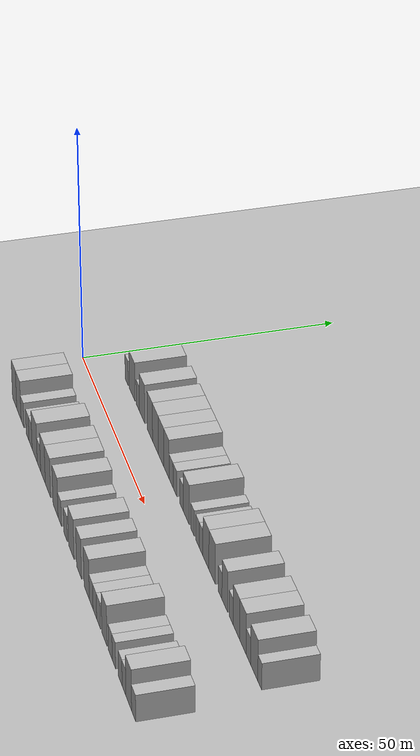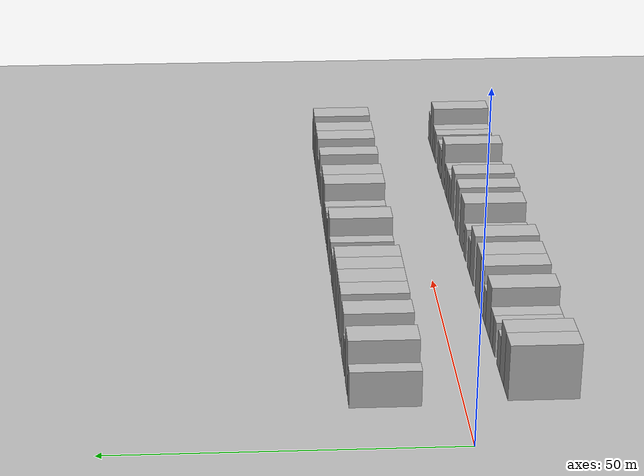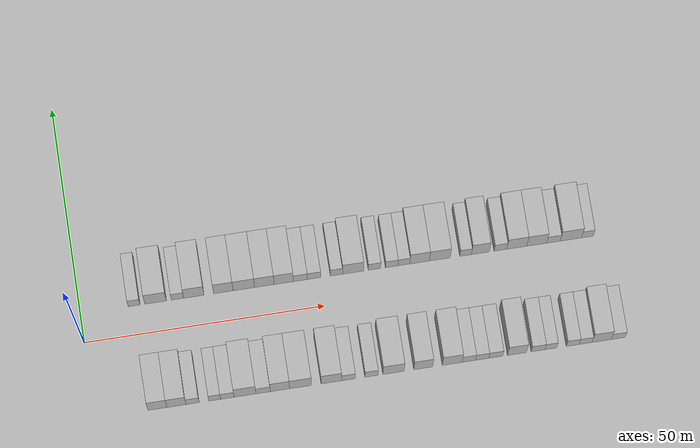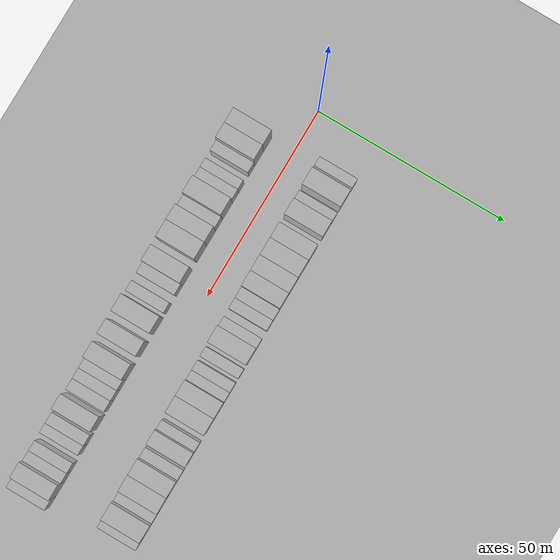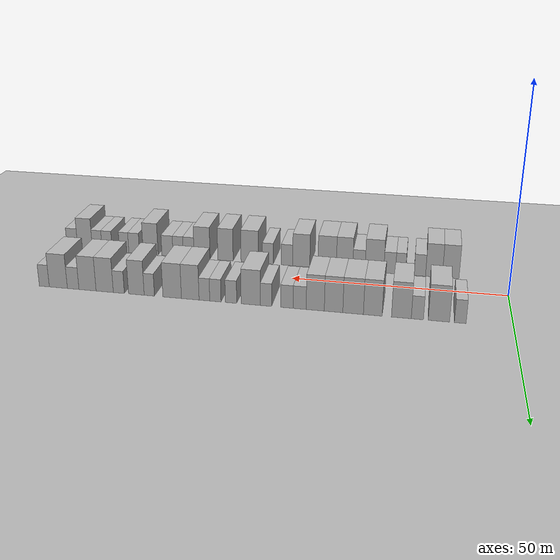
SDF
<sdf version="1.6">
 <world name="default">
  <include><name>ground_plane_1</name><uri>model://HANNAS_ground_plane</uri></include>
  <include>
   <name>ground_plane_2</name>
   <uri>model://HANNAS_ground_plane</uri>
   <pose>100 0 0  0 0 0</pose>
  </include>
  <model name="building_1">
   <static>1</static>
   <pose>11.2212 11.0000 0 0.000000 0.000000 1.570796</pose>
   <link name="link">
    <pose>0 0 3.00 0 0 0</pose>
    <collision name="collision"><geometry><box><size>10.0000 2.4425 6.0000</size></box></geometry></collision>
    <visual name="visual">
     <cast_shadows>0</cast_shadows>
     <geometry><box><size>10.0000 2.4425 6.0000</size></box></geometry>
     <material>
      <script>
       <uri>model://HANNAS_wall/materials/scripts</uri>
       <uri>model://HANNAS_wall/materials/textures</uri>
       <name>vrc/HANNAS_wall</name>
      </script>
     </material>
    </visual>
   </link>
  </model>
  <model name="building_2">
   <static>1</static>
   <pose>15.6833 11.0000 0 0.000000 0.000000 1.570796</pose>
   <link name="link">
    <pose>0 0 4.50 0 0 0</pose>
    <collision name="collision"><geometry><box><size>10.0000 4.4816 9.0000</size></box></geometry></collision>
    <visual name="visual">
     <cast_shadows>0</cast_shadows>
     <geometry><box><size>10.0000 4.4816 9.0000</size></box></geometry>
     <material>
      <script>
       <uri>model://HANNAS_wall/materials/scripts</uri>
       <uri>model://HANNAS_wall/materials/textures</uri>
       <name>vrc/HANNAS_wall</name>
      </script>
     </material>
    </visual>
   </link>
  </model>
  <model name="building_3">
   <static>1</static>
   <pose>20.2165 11.0000 0 0.000000 0.000000 1.570796</pose>
   <link name="link">
    <pose>0 0 3.00 0 0 0</pose>
    <collision name="collision"><geometry><box><size>10.0000 2.5849 6.0000</size></box></geometry></collision>
    <visual name="visual">
     <cast_shadows>0</cast_shadows>
     <geometry><box><size>10.0000 2.5849 6.0000</size></box></geometry>
     <material>
      <script>
       <uri>model://HANNAS_wall/materials/scripts</uri>
       <uri>model://HANNAS_wall/materials/textures</uri>
       <name>vrc/HANNAS_wall</name>
      </script>
     </material>
    </visual>
   </link>
  </model>
  <model name="building_4">
   <static>1</static>
   <pose>23.6177 11.0000 0 0.000000 0.000000 1.570796</pose>
   <link name="link">
    <pose>0 0 4.50 0 0 0</pose>
    <collision name="collision"><geometry><box><size>10.0000 4.2175 9.0000</size></box></geometry></collision>
    <visual name="visual">
     <cast_shadows>0</cast_shadows>
     <geometry><box><size>10.0000 4.2175 9.0000</size></box></geometry>
     <material>
      <script>
       <uri>model://HANNAS_wall/materials/scripts</uri>
       <uri>model://HANNAS_wall/materials/textures</uri>
       <name>vrc/HANNAS_wall</name>
      </script>
     </material>
    </visual>
   </link>
  </model>
  <model name="building_5">
   <static>1</static>
   <pose>29.7440 11.0000 0 0.000000 0.000000 1.570796</pose>
   <link name="link">
    <pose>0 0 4.50 0 0 0</pose>
    <collision name="collision"><geometry><box><size>10.0000 4.0352 9.0000</size></box></geometry></collision>
    <visual name="visual">
     <cast_shadows>0</cast_shadows>
     <geometry><box><size>10.0000 4.0352 9.0000</size></box></geometry>
     <material>
      <script>
       <uri>model://HANNAS_wall/materials/scripts</uri>
       <uri>model://HANNAS_wall/materials/textures</uri>
       <name>vrc/HANNAS_wall</name>
      </script>
     </material>
    </visual>
   </link>
  </model>
  <model name="building_6">
   <static>1</static>
   <pose>34.0001 11.0000 0 0.000000 0.000000 1.570796</pose>
   <link name="link">
    <pose>0 0 4.50 0 0 0</pose>
    <collision name="collision"><geometry><box><size>10.0000 4.4770 9.0000</size></box></geometry></collision>
    <visual name="visual">
     <cast_shadows>0</cast_shadows>
     <geometry><box><size>10.0000 4.4770 9.0000</size></box></geometry>
     <material>
      <script>
       <uri>model://HANNAS_wall/materials/scripts</uri>
       <uri>model://HANNAS_wall/materials/textures</uri>
       <name>vrc/HANNAS_wall</name>
      </script>
     </material>
    </visual>
   </link>
  </model>
  <model name="building_7">
   <static>1</static>
   <pose>38.2673 11.0000 0 0.000000 0.000000 1.570796</pose>
   <link name="link">
    <pose>0 0 4.50 0 0 0</pose>
    <collision name="collision"><geometry><box><size>10.0000 4.0575 9.0000</size></box></geometry></collision>
    <visual name="visual">
     <cast_shadows>0</cast_shadows>
     <geometry><box><size>10.0000 4.0575 9.0000</size></box></geometry>
     <material>
      <script>
       <uri>model://HANNAS_wall/materials/scripts</uri>
       <uri>model://HANNAS_wall/materials/textures</uri>
       <name>vrc/HANNAS_wall</name>
      </script>
     </material>
    </visual>
   </link>
  </model>
  <model name="building_8">
   <static>1</static>
   <pose>42.3002 11.0000 0 0.000000 0.000000 1.570796</pose>
   <link name="link">
    <pose>0 0 4.50 0 0 0</pose>
    <collision name="collision"><geometry><box><size>10.0000 4.0082 9.0000</size></box></geometry></collision>
    <visual name="visual">
     <cast_shadows>0</cast_shadows>
     <geometry><box><size>10.0000 4.0082 9.0000</size></box></geometry>
     <material>
      <script>
       <uri>model://HANNAS_wall/materials/scripts</uri>
       <uri>model://HANNAS_wall/materials/textures</uri>
       <name>vrc/HANNAS_wall</name>
      </script>
     </material>
    </visual>
   </link>
  </model>
  <model name="building_9">
   <static>1</static>
   <pose>45.7667 11.0000 0 0.000000 0.000000 1.570796</pose>
   <link name="link">
    <pose>0 0 3.00 0 0 0</pose>
    <collision name="collision"><geometry><box><size>10.0000 2.9247 6.0000</size></box></geometry></collision>
    <visual name="visual">
     <cast_shadows>0</cast_shadows>
     <geometry><box><size>10.0000 2.9247 6.0000</size></box></geometry>
     <material>
      <script>
       <uri>model://HANNAS_wall/materials/scripts</uri>
       <uri>model://HANNAS_wall/materials/textures</uri>
       <name>vrc/HANNAS_wall</name>
      </script>
     </material>
    </visual>
   </link>
  </model>
  <model name="building_10">
   <static>1</static>
   <pose>48.6232 11.0000 0 0.000000 0.000000 1.570796</pose>
   <link name="link">
    <pose>0 0 3.00 0 0 0</pose>
    <collision name="collision"><geometry><box><size>10.0000 2.7884 6.0000</size></box></geometry></collision>
    <visual name="visual">
     <cast_shadows>0</cast_shadows>
     <geometry><box><size>10.0000 2.7884 6.0000</size></box></geometry>
     <material>
      <script>
       <uri>model://HANNAS_wall/materials/scripts</uri>
       <uri>model://HANNAS_wall/materials/textures</uri>
       <name>vrc/HANNAS_wall</name>
      </script>
     </material>
    </visual>
   </link>
  </model>
  <model name="building_11">
   <static>1</static>
   <pose>53.2833 11.0000 0 0.000000 0.000000 1.570796</pose>
   <link name="link">
    <pose>0 0 3.00 0 0 0</pose>
    <collision name="collision"><geometry><box><size>10.0000 2.5317 6.0000</size></box></geometry></collision>
    <visual name="visual">
     <cast_shadows>0</cast_shadows>
     <geometry><box><size>10.0000 2.5317 6.0000</size></box></geometry>
     <material>
      <script>
       <uri>model://HANNAS_wall/materials/scripts</uri>
       <uri>model://HANNAS_wall/materials/textures</uri>
       <name>vrc/HANNAS_wall</name>
      </script>
     </material>
    </visual>
   </link>
  </model>
  <model name="building_12">
   <static>1</static>
   <pose>56.7394 11.0000 0 0.000000 0.000000 1.570796</pose>
   <link name="link">
    <pose>0 0 4.50 0 0 0</pose>
    <collision name="collision"><geometry><box><size>10.0000 4.3805 9.0000</size></box></geometry></collision>
    <visual name="visual">
     <cast_shadows>0</cast_shadows>
     <geometry><box><size>10.0000 4.3805 9.0000</size></box></geometry>
     <material>
      <script>
       <uri>model://HANNAS_wall/materials/scripts</uri>
       <uri>model://HANNAS_wall/materials/textures</uri>
       <name>vrc/HANNAS_wall</name>
      </script>
     </material>
    </visual>
   </link>
  </model>
  <model name="building_13">
   <static>1</static>
   <pose>61.2261 11.0000 0 0.000000 0.000000 1.570796</pose>
   <link name="link">
    <pose>0 0 3.00 0 0 0</pose>
    <collision name="collision"><geometry><box><size>10.0000 2.5931 6.0000</size></box></geometry></collision>
    <visual name="visual">
     <cast_shadows>0</cast_shadows>
     <geometry><box><size>10.0000 2.5931 6.0000</size></box></geometry>
     <material>
      <script>
       <uri>model://HANNAS_wall/materials/scripts</uri>
       <uri>model://HANNAS_wall/materials/textures</uri>
       <name>vrc/HANNAS_wall</name>
      </script>
     </material>
    </visual>
   </link>
  </model>
  <model name="building_14">
   <static>1</static>
   <pose>64.8206 11.0000 0 0.000000 0.000000 1.570796</pose>
   <link name="link">
    <pose>0 0 3.00 0 0 0</pose>
    <collision name="collision"><geometry><box><size>10.0000 2.5959 6.0000</size></box></geometry></collision>
    <visual name="visual">
     <cast_shadows>0</cast_shadows>
     <geometry><box><size>10.0000 2.5959 6.0000</size></box></geometry>
     <material>
      <script>
       <uri>model://HANNAS_wall/materials/scripts</uri>
       <uri>model://HANNAS_wall/materials/textures</uri>
       <name>vrc/HANNAS_wall</name>
      </script>
     </material>
    </visual>
   </link>
  </model>
  <model name="building_15">
   <static>1</static>
   <pose>67.3522 11.0000 0 0.000000 0.000000 1.570796</pose>
   <link name="link">
    <pose>0 0 3.00 0 0 0</pose>
    <collision name="collision"><geometry><box><size>10.0000 2.4673 6.0000</size></box></geometry></collision>
    <visual name="visual">
     <cast_shadows>0</cast_shadows>
     <geometry><box><size>10.0000 2.4673 6.0000</size></box></geometry>
     <material>
      <script>
       <uri>model://HANNAS_wall/materials/scripts</uri>
       <uri>model://HANNAS_wall/materials/textures</uri>
       <name>vrc/HANNAS_wall</name>
      </script>
     </material>
    </visual>
   </link>
  </model>
  <model name="building_16">
   <static>1</static>
   <pose>70.6427 11.0000 0 0.000000 0.000000 1.570796</pose>
   <link name="link">
    <pose>0 0 4.50 0 0 0</pose>
    <collision name="collision"><geometry><box><size>10.0000 4.1138 9.0000</size></box></geometry></collision>
    <visual name="visual">
     <cast_shadows>0</cast_shadows>
     <geometry><box><size>10.0000 4.1138 9.0000</size></box></geometry>
     <material>
      <script>
       <uri>model://HANNAS_wall/materials/scripts</uri>
       <uri>model://HANNAS_wall/materials/textures</uri>
       <name>vrc/HANNAS_wall</name>
      </script>
     </material>
    </visual>
   </link>
  </model>
  <model name="building_17">
   <static>1</static>
   <pose>74.8730 11.0000 0 0.000000 0.000000 1.570796</pose>
   <link name="link">
    <pose>0 0 4.50 0 0 0</pose>
    <collision name="collision"><geometry><box><size>10.0000 4.3467 9.0000</size></box></geometry></collision>
    <visual name="visual">
     <cast_shadows>0</cast_shadows>
     <geometry><box><size>10.0000 4.3467 9.0000</size></box></geometry>
     <material>
      <script>
       <uri>model://HANNAS_wall/materials/scripts</uri>
       <uri>model://HANNAS_wall/materials/textures</uri>
       <name>vrc/HANNAS_wall</name>
      </script>
     </material>
    </visual>
   </link>
  </model>
  <model name="building_18">
   <static>1</static>
   <pose>80.2642 11.0000 0 0.000000 0.000000 1.570796</pose>
   <link name="link">
    <pose>0 0 3.00 0 0 0</pose>
    <collision name="collision"><geometry><box><size>10.0000 2.4358 6.0000</size></box></geometry></collision>
    <visual name="visual">
     <cast_shadows>0</cast_shadows>
     <geometry><box><size>10.0000 2.4358 6.0000</size></box></geometry>
     <material>
      <script>
       <uri>model://HANNAS_wall/materials/scripts</uri>
       <uri>model://HANNAS_wall/materials/textures</uri>
       <name>vrc/HANNAS_wall</name>
      </script>
     </material>
    </visual>
   </link>
  </model>
  <model name="building_19">
   <static>1</static>
   <pose>83.3483 11.0000 0 0.000000 0.000000 1.570796</pose>
   <link name="link">
    <pose>0 0 4.50 0 0 0</pose>
    <collision name="collision"><geometry><box><size>10.0000 3.7323 9.0000</size></box></geometry></collision>
    <visual name="visual">
     <cast_shadows>0</cast_shadows>
     <geometry><box><size>10.0000 3.7323 9.0000</size></box></geometry>
     <material>
      <script>
       <uri>model://HANNAS_wall/materials/scripts</uri>
       <uri>model://HANNAS_wall/materials/textures</uri>
       <name>vrc/HANNAS_wall</name>
      </script>
     </material>
    </visual>
   </link>
  </model>
  <model name="building_20">
   <static>1</static>
   <pose>87.5436 11.0000 0 0.000000 0.000000 1.570796</pose>
   <link name="link">
    <pose>0 0 3.00 0 0 0</pose>
    <collision name="collision"><geometry><box><size>10.0000 2.6584 6.0000</size></box></geometry></collision>
    <visual name="visual">
     <cast_shadows>0</cast_shadows>
     <geometry><box><size>10.0000 2.6584 6.0000</size></box></geometry>
     <material>
      <script>
       <uri>model://HANNAS_wall/materials/scripts</uri>
       <uri>model://HANNAS_wall/materials/textures</uri>
       <name>vrc/HANNAS_wall</name>
      </script>
     </material>
    </visual>
   </link>
  </model>
  <model name="building_21">
   <static>1</static>
   <pose>90.9556 11.0000 0 0.000000 0.000000 1.570796</pose>
   <link name="link">
    <pose>0 0 4.50 0 0 0</pose>
    <collision name="collision"><geometry><box><size>10.0000 4.1655 9.0000</size></box></geometry></collision>
    <visual name="visual">
     <cast_shadows>0</cast_shadows>
     <geometry><box><size>10.0000 4.1655 9.0000</size></box></geometry>
     <material>
      <script>
       <uri>model://HANNAS_wall/materials/scripts</uri>
       <uri>model://HANNAS_wall/materials/textures</uri>
       <name>vrc/HANNAS_wall</name>
      </script>
     </material>
    </visual>
   </link>
  </model>
  <model name="building_22">
   <static>1</static>
   <pose>95.1269 11.0000 0 0.000000 0.000000 1.570796</pose>
   <link name="link">
    <pose>0 0 4.50 0 0 0</pose>
    <collision name="collision"><geometry><box><size>10.0000 4.1772 9.0000</size></box></geometry></collision>
    <visual name="visual">
     <cast_shadows>0</cast_shadows>
     <geometry><box><size>10.0000 4.1772 9.0000</size></box></geometry>
     <material>
      <script>
       <uri>model://HANNAS_wall/materials/scripts</uri>
       <uri>model://HANNAS_wall/materials/textures</uri>
       <name>vrc/HANNAS_wall</name>
      </script>
     </material>
    </visual>
   </link>
  </model>
  <model name="building_23">
   <static>1</static>
   <pose>98.6332 11.0000 0 0.000000 0.000000 1.570796</pose>
   <link name="link">
    <pose>0 0 3.00 0 0 0</pose>
    <collision name="collision"><geometry><box><size>10.0000 2.8355 6.0000</size></box></geometry></collision>
    <visual name="visual">
     <cast_shadows>0</cast_shadows>
     <geometry><box><size>10.0000 2.8355 6.0000</size></box></geometry>
     <material>
      <script>
       <uri>model://HANNAS_wall/materials/scripts</uri>
       <uri>model://HANNAS_wall/materials/textures</uri>
       <name>vrc/HANNAS_wall</name>
      </script>
     </material>
    </visual>
   </link>
  </model>
  <model name="building_24">
   <static>1</static>
   <pose>102.2851 11.0000 0 0.000000 0.000000 1.570796</pose>
   <link name="link">
    <pose>0 0 4.50 0 0 0</pose>
    <collision name="collision"><geometry><box><size>10.0000 4.4683 9.0000</size></box></geometry></collision>
    <visual name="visual">
     <cast_shadows>0</cast_shadows>
     <geometry><box><size>10.0000 4.4683 9.0000</size></box></geometry>
     <material>
      <script>
       <uri>model://HANNAS_wall/materials/scripts</uri>
       <uri>model://HANNAS_wall/materials/textures</uri>
       <name>vrc/HANNAS_wall</name>
      </script>
     </material>
    </visual>
   </link>
  </model>
  <model name="building_25">
   <static>1</static>
   <pose>105.7495 11.0000 0 0.000000 0.000000 1.570796</pose>
   <link name="link">
    <pose>0 0 3.00 0 0 0</pose>
    <collision name="collision"><geometry><box><size>10.0000 2.4605 6.0000</size></box></geometry></collision>
    <visual name="visual">
     <cast_shadows>0</cast_shadows>
     <geometry><box><size>10.0000 2.4605 6.0000</size></box></geometry>
     <material>
      <script>
       <uri>model://HANNAS_wall/materials/scripts</uri>
       <uri>model://HANNAS_wall/materials/textures</uri>
       <name>vrc/HANNAS_wall</name>
      </script>
     </material>
    </visual>
   </link>
  </model>
  <model name="building_52">
   <static>1</static>
   <pose>12.9461 -11.0000 0 0.000000 0.000000 1.570796</pose>
   <link name="link">
    <pose>0 0 4.50 0 0 0</pose>
    <collision name="collision"><geometry><box><size>10.0000 3.8923 9.0000</size></box></geometry></collision>
    <visual name="visual">
     <cast_shadows>0</cast_shadows>
     <geometry><box><size>10.0000 3.8923 9.0000</size></box></geometry>
     <material>
      <script>
       <uri>model://HANNAS_wall/materials/scripts</uri>
       <uri>model://HANNAS_wall/materials/textures</uri>
       <name>vrc/HANNAS_wall</name>
      </script>
     </material>
    </visual>
   </link>
  </model>
  <model name="building_53">
   <static>1</static>
   <pose>16.8509 -11.0000 0 0.000000 0.000000 1.570796</pose>
   <link name="link">
    <pose>0 0 4.50 0 0 0</pose>
    <collision name="collision"><geometry><box><size>10.0000 3.9173 9.0000</size></box></geometry></collision>
    <visual name="visual">
     <cast_shadows>0</cast_shadows>
     <geometry><box><size>10.0000 3.9173 9.0000</size></box></geometry>
     <material>
      <script>
       <uri>model://HANNAS_wall/materials/scripts</uri>
       <uri>model://HANNAS_wall/materials/textures</uri>
       <name>vrc/HANNAS_wall</name>
      </script>
     </material>
    </visual>
   </link>
  </model>
  <model name="building_54">
   <static>1</static>
   <pose>20.1621 -11.0000 0 0.000000 0.000000 1.570796</pose>
   <link name="link">
    <pose>0 0 3.00 0 0 0</pose>
    <collision name="collision"><geometry><box><size>10.0000 2.7050 6.0000</size></box></geometry></collision>
    <visual name="visual">
     <cast_shadows>0</cast_shadows>
     <geometry><box><size>10.0000 2.7050 6.0000</size></box></geometry>
     <material>
      <script>
       <uri>model://HANNAS_wall/materials/scripts</uri>
       <uri>model://HANNAS_wall/materials/textures</uri>
       <name>vrc/HANNAS_wall</name>
      </script>
     </material>
    </visual>
   </link>
  </model>
  <model name="building_55">
   <static>1</static>
   <pose>24.7179 -11.0000 0 0.000000 0.000000 1.570796</pose>
   <link name="link">
    <pose>0 0 3.00 0 0 0</pose>
    <collision name="collision"><geometry><box><size>10.0000 2.4067 6.0000</size></box></geometry></collision>
    <visual name="visual">
     <cast_shadows>0</cast_shadows>
     <geometry><box><size>10.0000 2.4067 6.0000</size></box></geometry>
     <material>
      <script>
       <uri>model://HANNAS_wall/materials/scripts</uri>
       <uri>model://HANNAS_wall/materials/textures</uri>
       <name>vrc/HANNAS_wall</name>
      </script>
     </material>
    </visual>
   </link>
  </model>
  <model name="building_56">
   <static>1</static>
   <pose>27.3172 -11.0000 0 0.000000 0.000000 1.570796</pose>
   <link name="link">
    <pose>0 0 3.00 0 0 0</pose>
    <collision name="collision"><geometry><box><size>10.0000 2.7918 6.0000</size></box></geometry></collision>
    <visual name="visual">
     <cast_shadows>0</cast_shadows>
     <geometry><box><size>10.0000 2.7918 6.0000</size></box></geometry>
     <material>
      <script>
       <uri>model://HANNAS_wall/materials/scripts</uri>
       <uri>model://HANNAS_wall/materials/textures</uri>
       <name>vrc/HANNAS_wall</name>
      </script>
     </material>
    </visual>
   </link>
  </model>
  <model name="building_57">
   <static>1</static>
   <pose>30.9598 -11.0000 0 0.000000 0.000000 1.570796</pose>
   <link name="link">
    <pose>0 0 4.50 0 0 0</pose>
    <collision name="collision"><geometry><box><size>10.0000 4.4933 9.0000</size></box></geometry></collision>
    <visual name="visual">
     <cast_shadows>0</cast_shadows>
     <geometry><box><size>10.0000 4.4933 9.0000</size></box></geometry>
     <material>
      <script>
       <uri>model://HANNAS_wall/materials/scripts</uri>
       <uri>model://HANNAS_wall/materials/textures</uri>
       <name>vrc/HANNAS_wall</name>
      </script>
     </material>
    </visual>
   </link>
  </model>
  <model name="building_58">
   <static>1</static>
   <pose>34.6957 -11.0000 0 0.000000 0.000000 1.570796</pose>
   <link name="link">
    <pose>0 0 3.00 0 0 0</pose>
    <collision name="collision"><geometry><box><size>10.0000 2.9786 6.0000</size></box></geometry></collision>
    <visual name="visual">
     <cast_shadows>0</cast_shadows>
     <geometry><box><size>10.0000 2.9786 6.0000</size></box></geometry>
     <material>
      <script>
       <uri>model://HANNAS_wall/materials/scripts</uri>
       <uri>model://HANNAS_wall/materials/textures</uri>
       <name>vrc/HANNAS_wall</name>
      </script>
     </material>
    </visual>
   </link>
  </model>
  <model name="building_59">
   <static>1</static>
   <pose>38.1851 -11.0000 0 0.000000 0.000000 1.570796</pose>
   <link name="link">
    <pose>0 0 4.50 0 0 0</pose>
    <collision name="collision"><geometry><box><size>10.0000 4.0000 9.0000</size></box></geometry></collision>
    <visual name="visual">
     <cast_shadows>0</cast_shadows>
     <geometry><box><size>10.0000 4.0000 9.0000</size></box></geometry>
     <material>
      <script>
       <uri>model://HANNAS_wall/materials/scripts</uri>
       <uri>model://HANNAS_wall/materials/textures</uri>
       <name>vrc/HANNAS_wall</name>
      </script>
     </material>
    </visual>
   </link>
  </model>
  <model name="building_60">
   <static>1</static>
   <pose>42.4343 -11.0000 0 0.000000 0.000000 1.570796</pose>
   <link name="link">
    <pose>0 0 4.50 0 0 0</pose>
    <collision name="collision"><geometry><box><size>10.0000 4.4985 9.0000</size></box></geometry></collision>
    <visual name="visual">
     <cast_shadows>0</cast_shadows>
     <geometry><box><size>10.0000 4.4985 9.0000</size></box></geometry>
     <material>
      <script>
       <uri>model://HANNAS_wall/materials/scripts</uri>
       <uri>model://HANNAS_wall/materials/textures</uri>
       <name>vrc/HANNAS_wall</name>
      </script>
     </material>
    </visual>
   </link>
  </model>
  <model name="building_61">
   <static>1</static>
   <pose>48.7974 -11.0000 0 0.000000 0.000000 1.570796</pose>
   <link name="link">
    <pose>0 0 4.50 0 0 0</pose>
    <collision name="collision"><geometry><box><size>10.0000 4.2277 9.0000</size></box></geometry></collision>
    <visual name="visual">
     <cast_shadows>0</cast_shadows>
     <geometry><box><size>10.0000 4.2277 9.0000</size></box></geometry>
     <material>
      <script>
       <uri>model://HANNAS_wall/materials/scripts</uri>
       <uri>model://HANNAS_wall/materials/textures</uri>
       <name>vrc/HANNAS_wall</name>
      </script>
     </material>
    </visual>
   </link>
  </model>
  <model name="building_62">
   <static>1</static>
   <pose>52.3342 -11.0000 0 0.000000 0.000000 1.570796</pose>
   <link name="link">
    <pose>0 0 3.00 0 0 0</pose>
    <collision name="collision"><geometry><box><size>10.0000 2.8459 6.0000</size></box></geometry></collision>
    <visual name="visual">
     <cast_shadows>0</cast_shadows>
     <geometry><box><size>10.0000 2.8459 6.0000</size></box></geometry>
     <material>
      <script>
       <uri>model://HANNAS_wall/materials/scripts</uri>
       <uri>model://HANNAS_wall/materials/textures</uri>
       <name>vrc/HANNAS_wall</name>
      </script>
     </material>
    </visual>
   </link>
  </model>
  <model name="building_63">
   <static>1</static>
   <pose>57.1137 -11.0000 0 0.000000 0.000000 1.570796</pose>
   <link name="link">
    <pose>0 0 3.00 0 0 0</pose>
    <collision name="collision"><geometry><box><size>10.0000 2.7132 6.0000</size></box></geometry></collision>
    <visual name="visual">
     <cast_shadows>0</cast_shadows>
     <geometry><box><size>10.0000 2.7132 6.0000</size></box></geometry>
     <material>
      <script>
       <uri>model://HANNAS_wall/materials/scripts</uri>
       <uri>model://HANNAS_wall/materials/textures</uri>
       <name>vrc/HANNAS_wall</name>
      </script>
     </material>
    </visual>
   </link>
  </model>
  <model name="building_64">
   <static>1</static>
   <pose>61.6842 -11.0000 0 0.000000 0.000000 1.570796</pose>
   <link name="link">
    <pose>0 0 4.50 0 0 0</pose>
    <collision name="collision"><geometry><box><size>10.0000 4.4278 9.0000</size></box></geometry></collision>
    <visual name="visual">
     <cast_shadows>0</cast_shadows>
     <geometry><box><size>10.0000 4.4278 9.0000</size></box></geometry>
     <material>
      <script>
       <uri>model://HANNAS_wall/materials/scripts</uri>
       <uri>model://HANNAS_wall/materials/textures</uri>
       <name>vrc/HANNAS_wall</name>
      </script>
     </material>
    </visual>
   </link>
  </model>
  <model name="building_65">
   <static>1</static>
   <pose>67.8493 -11.0000 0 0.000000 0.000000 1.570796</pose>
   <link name="link">
    <pose>0 0 4.50 0 0 0</pose>
    <collision name="collision"><geometry><box><size>10.0000 3.9024 9.0000</size></box></geometry></collision>
    <visual name="visual">
     <cast_shadows>0</cast_shadows>
     <geometry><box><size>10.0000 3.9024 9.0000</size></box></geometry>
     <material>
      <script>
       <uri>model://HANNAS_wall/materials/scripts</uri>
       <uri>model://HANNAS_wall/materials/textures</uri>
       <name>vrc/HANNAS_wall</name>
      </script>
     </material>
    </visual>
   </link>
  </model>
  <model name="building_66">
   <static>1</static>
   <pose>73.8564 -11.0000 0 0.000000 0.000000 1.570796</pose>
   <link name="link">
    <pose>0 0 4.50 0 0 0</pose>
    <collision name="collision"><geometry><box><size>10.0000 4.1119 9.0000</size></box></geometry></collision>
    <visual name="visual">
     <cast_shadows>0</cast_shadows>
     <geometry><box><size>10.0000 4.1119 9.0000</size></box></geometry>
     <material>
      <script>
       <uri>model://HANNAS_wall/materials/scripts</uri>
       <uri>model://HANNAS_wall/materials/textures</uri>
       <name>vrc/HANNAS_wall</name>
      </script>
     </material>
    </visual>
   </link>
  </model>
  <model name="building_67">
   <static>1</static>
   <pose>77.3124 -11.0000 0 0.000000 0.000000 1.570796</pose>
   <link name="link">
    <pose>0 0 3.00 0 0 0</pose>
    <collision name="collision"><geometry><box><size>10.0000 2.8002 6.0000</size></box></geometry></collision>
    <visual name="visual">
     <cast_shadows>0</cast_shadows>
     <geometry><box><size>10.0000 2.8002 6.0000</size></box></geometry>
     <material>
      <script>
       <uri>model://HANNAS_wall/materials/scripts</uri>
       <uri>model://HANNAS_wall/materials/textures</uri>
       <name>vrc/HANNAS_wall</name>
      </script>
     </material>
    </visual>
   </link>
  </model>
  <model name="building_68">
   <static>1</static>
   <pose>80.0639 -11.0000 0 0.000000 0.000000 1.570796</pose>
   <link name="link">
    <pose>0 0 3.00 0 0 0</pose>
    <collision name="collision"><geometry><box><size>10.0000 2.7026 6.0000</size></box></geometry></collision>
    <visual name="visual">
     <cast_shadows>0</cast_shadows>
     <geometry><box><size>10.0000 2.7026 6.0000</size></box></geometry>
     <material>
      <script>
       <uri>model://HANNAS_wall/materials/scripts</uri>
       <uri>model://HANNAS_wall/materials/textures</uri>
       <name>vrc/HANNAS_wall</name>
      </script>
     </material>
    </visual>
   </link>
  </model>
  <model name="building_69">
   <static>1</static>
   <pose>82.8720 -11.0000 0 0.000000 0.000000 1.570796</pose>
   <link name="link">
    <pose>0 0 3.00 0 0 0</pose>
    <collision name="collision"><geometry><box><size>10.0000 2.9136 6.0000</size></box></geometry></collision>
    <visual name="visual">
     <cast_shadows>0</cast_shadows>
     <geometry><box><size>10.0000 2.9136 6.0000</size></box></geometry>
     <material>
      <script>
       <uri>model://HANNAS_wall/materials/scripts</uri>
       <uri>model://HANNAS_wall/materials/textures</uri>
       <name>vrc/HANNAS_wall</name>
      </script>
     </material>
    </visual>
   </link>
  </model>
  <model name="building_70">
   <static>1</static>
   <pose>87.2883 -11.0000 0 0.000000 0.000000 1.570796</pose>
   <link name="link">
    <pose>0 0 4.50 0 0 0</pose>
    <collision name="collision"><geometry><box><size>10.0000 3.9189 9.0000</size></box></geometry></collision>
    <visual name="visual">
     <cast_shadows>0</cast_shadows>
     <geometry><box><size>10.0000 3.9189 9.0000</size></box></geometry>
     <material>
      <script>
       <uri>model://HANNAS_wall/materials/scripts</uri>
       <uri>model://HANNAS_wall/materials/textures</uri>
       <name>vrc/HANNAS_wall</name>
      </script>
     </material>
    </visual>
   </link>
  </model>
  <model name="building_71">
   <static>1</static>
   <pose>91.6692 -11.0000 0 0.000000 0.000000 1.570796</pose>
   <link name="link">
    <pose>0 0 3.00 0 0 0</pose>
    <collision name="collision"><geometry><box><size>10.0000 2.8430 6.0000</size></box></geometry></collision>
    <visual name="visual">
     <cast_shadows>0</cast_shadows>
     <geometry><box><size>10.0000 2.8430 6.0000</size></box></geometry>
     <material>
      <script>
       <uri>model://HANNAS_wall/materials/scripts</uri>
       <uri>model://HANNAS_wall/materials/textures</uri>
       <name>vrc/HANNAS_wall</name>
      </script>
     </material>
    </visual>
   </link>
  </model>
  <model name="building_72">
   <static>1</static>
   <pose>94.3163 -11.0000 0 0.000000 0.000000 1.570796</pose>
   <link name="link">
    <pose>0 0 3.00 0 0 0</pose>
    <collision name="collision"><geometry><box><size>10.0000 2.4511 6.0000</size></box></geometry></collision>
    <visual name="visual">
     <cast_shadows>0</cast_shadows>
     <geometry><box><size>10.0000 2.4511 6.0000</size></box></geometry>
     <material>
      <script>
       <uri>model://HANNAS_wall/materials/scripts</uri>
       <uri>model://HANNAS_wall/materials/textures</uri>
       <name>vrc/HANNAS_wall</name>
      </script>
     </material>
    </visual>
   </link>
  </model>
  <model name="building_73">
   <static>1</static>
   <pose>98.8909 -11.0000 0 0.000000 0.000000 1.570796</pose>
   <link name="link">
    <pose>0 0 3.00 0 0 0</pose>
    <collision name="collision"><geometry><box><size>10.0000 2.6981 6.0000</size></box></geometry></collision>
    <visual name="visual">
     <cast_shadows>0</cast_shadows>
     <geometry><box><size>10.0000 2.6981 6.0000</size></box></geometry>
     <material>
      <script>
       <uri>model://HANNAS_wall/materials/scripts</uri>
       <uri>model://HANNAS_wall/materials/textures</uri>
       <name>vrc/HANNAS_wall</name>
      </script>
     </material>
    </visual>
   </link>
  </model>
  <model name="building_74">
   <static>1</static>
   <pose>101.5573 -11.0000 0 0.000000 0.000000 1.570796</pose>
   <link name="link">
    <pose>0 0 3.00 0 0 0</pose>
    <collision name="collision"><geometry><box><size>10.0000 2.6347 6.0000</size></box></geometry></collision>
    <visual name="visual">
     <cast_shadows>0</cast_shadows>
     <geometry><box><size>10.0000 2.6347 6.0000</size></box></geometry>
     <material>
      <script>
       <uri>model://HANNAS_wall/materials/scripts</uri>
       <uri>model://HANNAS_wall/materials/textures</uri>
       <name>vrc/HANNAS_wall</name>
      </script>
     </material>
    </visual>
   </link>
  </model>
  <model name="building_75">
   <static>1</static>
   <pose>104.8697 -11.0000 0 0.000000 0.000000 1.570796</pose>
   <link name="link">
    <pose>0 0 4.50 0 0 0</pose>
    <collision name="collision"><geometry><box><size>10.0000 3.9902 9.0000</size></box></geometry></collision>
    <visual name="visual">
     <cast_shadows>0</cast_shadows>
     <geometry><box><size>10.0000 3.9902 9.0000</size></box></geometry>
     <material>
      <script>
       <uri>model://HANNAS_wall/materials/scripts</uri>
       <uri>model://HANNAS_wall/materials/textures</uri>
       <name>vrc/HANNAS_wall</name>
      </script>
     </material>
    </visual>
   </link>
  </model>
  <model name="building_76">
   <static>1</static>
   <pose>108.3218 -11.0000 0 0.000000 0.000000 1.570796</pose>
   <link name="link">
    <pose>0 0 3.00 0 0 0</pose>
    <collision name="collision"><geometry><box><size>10.0000 2.9140 6.0000</size></box></geometry></collision>
    <visual name="visual">
     <cast_shadows>0</cast_shadows>
     <geometry><box><size>10.0000 2.9140 6.0000</size></box></geometry>
     <material>
      <script>
       <uri>model://HANNAS_wall/materials/scripts</uri>
       <uri>model://HANNAS_wall/materials/textures</uri>
       <name>vrc/HANNAS_wall</name>
      </script>
     </material>
    </visual>
   </link>
  </model>
 </world>
</sdf>
